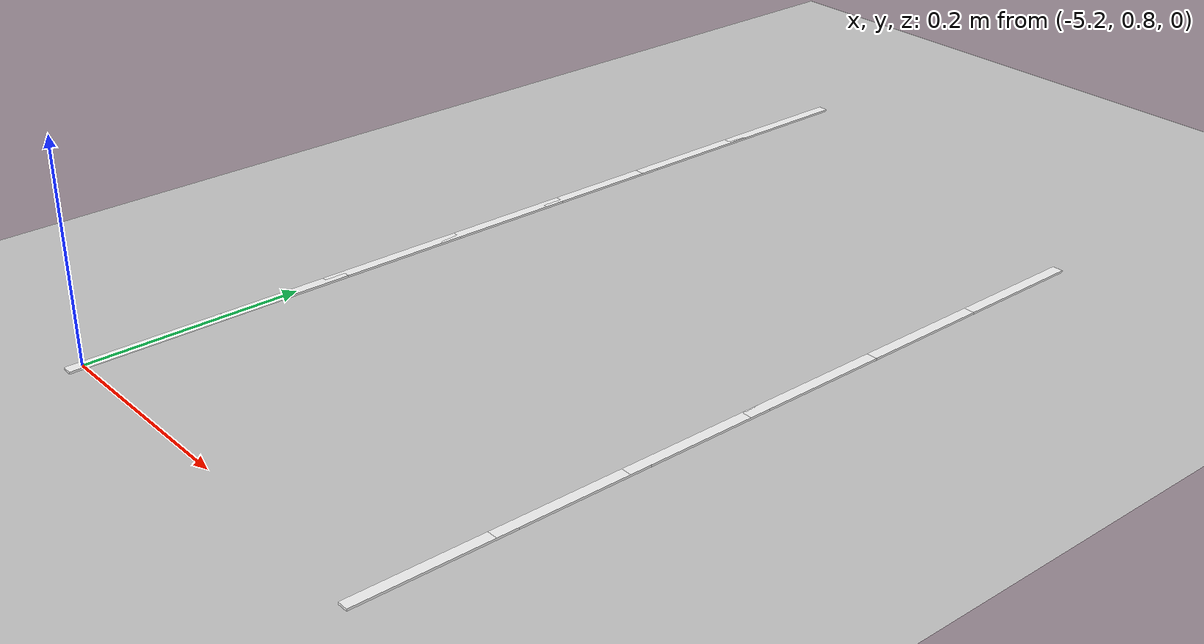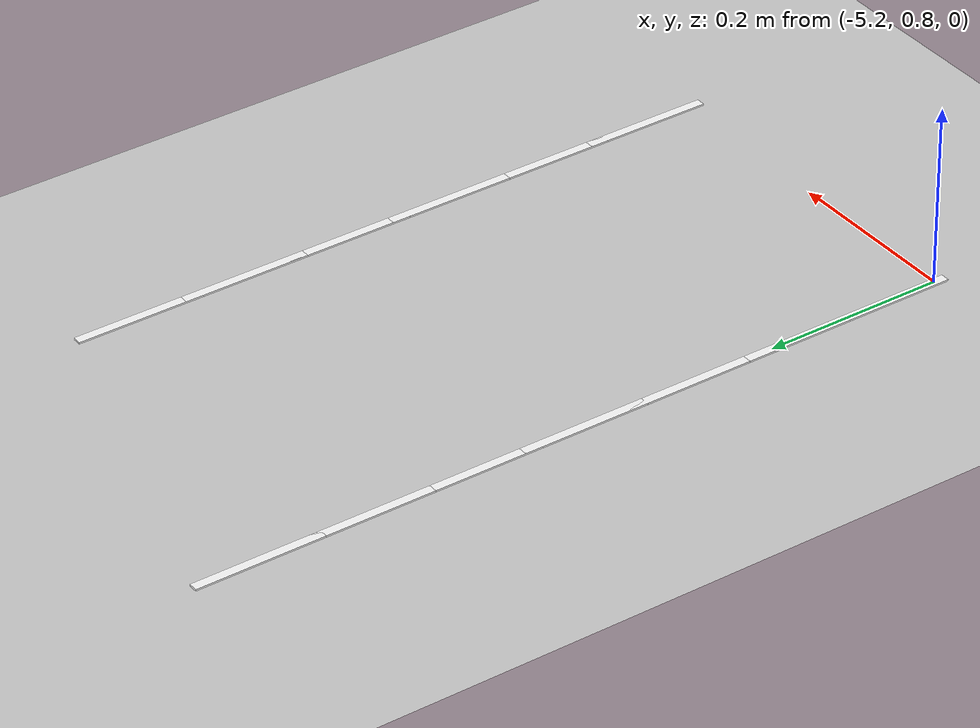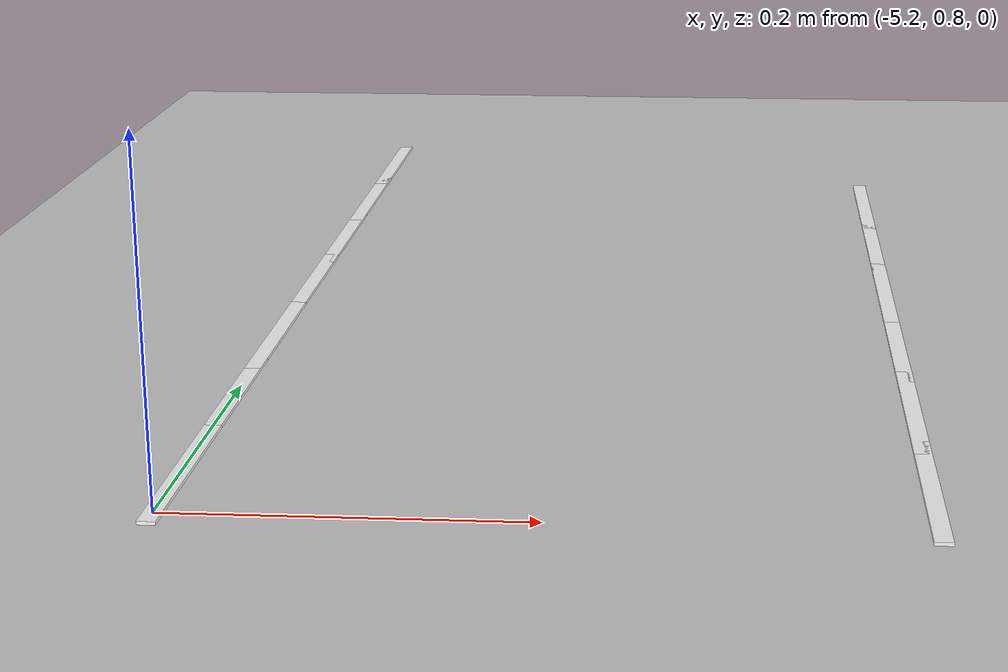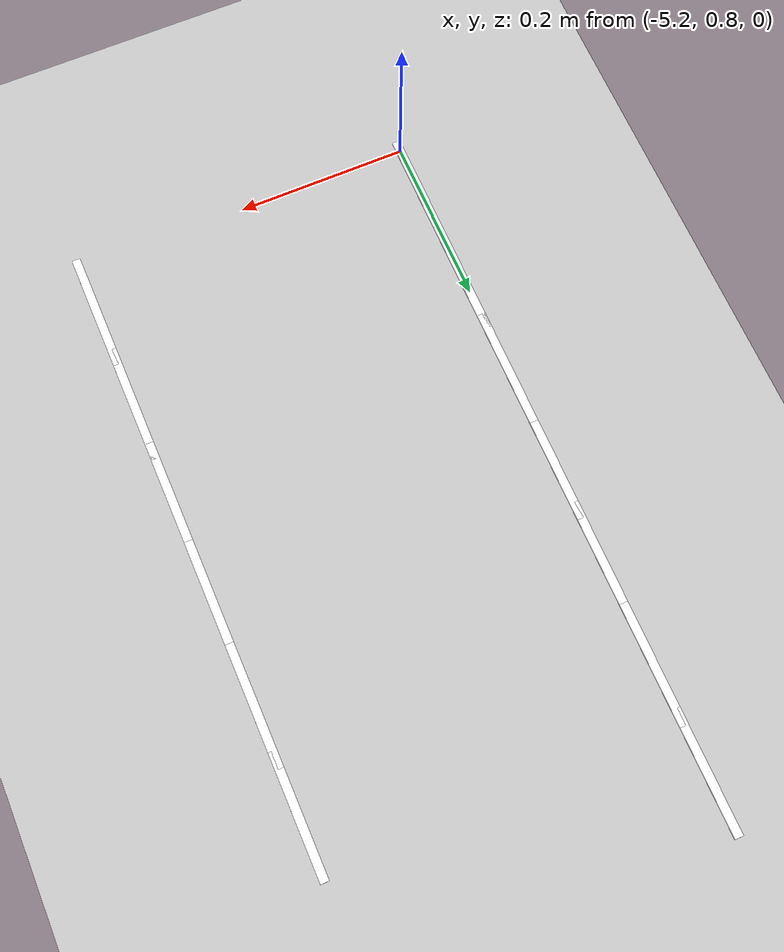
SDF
<sdf version="1.7">
 <world name="default">
  <model name="ground_plane">
   <static>1</static>
   <link name="link">
    <collision name="collision">
     <geometry><plane><normal>0 0 1</normal><size>100 100</size></plane></geometry>
     <surface>
      <contact><collide_bitmask>65535</collide_bitmask></contact>
      <friction><ode><mu>100</mu><mu2>50</mu2></ode></friction>
     </surface>
    </collision>
    <visual name="visual">
     <cast_shadows>0</cast_shadows>
     <geometry><plane><normal>0 0 1</normal><size>100 100</size></plane></geometry>
     <material>
      <script><uri>file://media/materials/scripts/gazebo.material</uri><name>Gazebo/Grey</name></script>
     </material>
    </visual>
   </link>
  </model>
  <model name="lane_line_right_311">
   <static>1</static>
   <link name="link">
    <pose>0 0 -0.004 0 -0 0</pose>
    <visual name="visual">
     <geometry><box><size>0.1424 0.01 0.01</size></box></geometry>
     <material><ambient>1 1 1 1</ambient><diffuse>1 1 1 1</diffuse></material>
    </visual>
    <collision name="collision"><geometry><box><size>0.1424 0.01 0.01</size></box></geometry></collision>
   </link>
   <pose>-5.2 1.59184 0 0 0 -1.5708</pose>
  </model>
  <model name="lane_line_left_312">
   <static>1</static>
   <link name="link">
    <pose>0 0 -0.004 0 -0 0</pose>
    <visual name="visual">
     <geometry><box><size>0.1424 0.01 0.01</size></box></geometry>
     <material><ambient>1 1 1 1</ambient><diffuse>1 1 1 1</diffuse></material>
    </visual>
    <collision name="collision"><geometry><box><size>0.1424 0.01 0.01</size></box></geometry></collision>
   </link>
   <pose>-4.8 1.46939 0 0 0 -1.5708</pose>
  </model>
  <model name="lane_line_right_312">
   <static>1</static>
   <link name="link">
    <pose>0 0 -0.004 0 -0 0</pose>
    <visual name="visual">
     <geometry><box><size>0.1424 0.01 0.01</size></box></geometry>
     <material><ambient>1 1 1 1</ambient><diffuse>1 1 1 1</diffuse></material>
    </visual>
    <collision name="collision"><geometry><box><size>0.1424 0.01 0.01</size></box></geometry></collision>
   </link>
   <pose>-5.2 1.46939 0 0 0 -1.5708</pose>
  </model>
  <model name="lane_line_left_313">
   <static>1</static>
   <link name="link">
    <pose>0 0 -0.004 0 -0 0</pose>
    <visual name="visual">
     <geometry><box><size>0.1424 0.01 0.01</size></box></geometry>
     <material><ambient>1 1 1 1</ambient><diffuse>1 1 1 1</diffuse></material>
    </visual>
    <collision name="collision"><geometry><box><size>0.1424 0.01 0.01</size></box></geometry></collision>
   </link>
   <pose>-4.8 1.34694 0 0 0 -1.5708</pose>
  </model>
  <model name="lane_line_right_313">
   <static>1</static>
   <link name="link">
    <pose>0 0 -0.004 0 -0 0</pose>
    <visual name="visual">
     <geometry><box><size>0.1424 0.01 0.01</size></box></geometry>
     <material><ambient>1 1 1 1</ambient><diffuse>1 1 1 1</diffuse></material>
    </visual>
    <collision name="collision"><geometry><box><size>0.1424 0.01 0.01</size></box></geometry></collision>
   </link>
   <pose>-5.2 1.34694 0 0 0 -1.5708</pose>
  </model>
  <model name="lane_line_left_314">
   <static>1</static>
   <link name="link">
    <pose>0 0 -0.004 0 -0 0</pose>
    <visual name="visual">
     <geometry><box><size>0.1424 0.01 0.01</size></box></geometry>
     <material><ambient>1 1 1 1</ambient><diffuse>1 1 1 1</diffuse></material>
    </visual>
    <collision name="collision"><geometry><box><size>0.1424 0.01 0.01</size></box></geometry></collision>
   </link>
   <pose>-4.8 1.22449 0 0 0 -1.5708</pose>
  </model>
  <model name="lane_line_right_314">
   <static>1</static>
   <link name="link">
    <pose>0 0 -0.004 0 -0 0</pose>
    <visual name="visual">
     <geometry><box><size>0.1424 0.01 0.01</size></box></geometry>
     <material><ambient>1 1 1 1</ambient><diffuse>1 1 1 1</diffuse></material>
    </visual>
    <collision name="collision"><geometry><box><size>0.1424 0.01 0.01</size></box></geometry></collision>
   </link>
   <pose>-5.2 1.22449 0 0 0 -1.5708</pose>
  </model>
  <model name="lane_line_left_315">
   <static>1</static>
   <link name="link">
    <pose>0 0 -0.004 0 -0 0</pose>
    <visual name="visual">
     <geometry><box><size>0.1424 0.01 0.01</size></box></geometry>
     <material><ambient>1 1 1 1</ambient><diffuse>1 1 1 1</diffuse></material>
    </visual>
    <collision name="collision"><geometry><box><size>0.1424 0.01 0.01</size></box></geometry></collision>
   </link>
   <pose>-4.8 1.10204 0 0 0 -1.5708</pose>
  </model>
  <model name="lane_line_right_315">
   <static>1</static>
   <link name="link">
    <pose>0 0 -0.004 0 -0 0</pose>
    <visual name="visual">
     <geometry><box><size>0.1424 0.01 0.01</size></box></geometry>
     <material><ambient>1 1 1 1</ambient><diffuse>1 1 1 1</diffuse></material>
    </visual>
    <collision name="collision"><geometry><box><size>0.1424 0.01 0.01</size></box></geometry></collision>
   </link>
   <pose>-5.2 1.10204 0 0 0 -1.5708</pose>
  </model>
  <model name="lane_line_left_316">
   <static>1</static>
   <link name="link">
    <pose>0 0 -0.004 0 -0 0</pose>
    <visual name="visual">
     <geometry><box><size>0.1424 0.01 0.01</size></box></geometry>
     <material><ambient>1 1 1 1</ambient><diffuse>1 1 1 1</diffuse></material>
    </visual>
    <collision name="collision"><geometry><box><size>0.1424 0.01 0.01</size></box></geometry></collision>
   </link>
   <pose>-4.8 0.979592 0 0 0 -1.5708</pose>
  </model>
  <model name="lane_line_right_316">
   <static>1</static>
   <link name="link">
    <pose>0 0 -0.004 0 -0 0</pose>
    <visual name="visual">
     <geometry><box><size>0.1424 0.01 0.01</size></box></geometry>
     <material><ambient>1 1 1 1</ambient><diffuse>1 1 1 1</diffuse></material>
    </visual>
    <collision name="collision"><geometry><box><size>0.1424 0.01 0.01</size></box></geometry></collision>
   </link>
   <pose>-5.2 0.979592 0 0 0 -1.5708</pose>
  </model>
  <model name="lane_line_left_317">
   <static>1</static>
   <link name="link">
    <pose>0 0 -0.004 0 -0 0</pose>
    <visual name="visual">
     <geometry><box><size>0.1424 0.01 0.01</size></box></geometry>
     <material><ambient>1 1 1 1</ambient><diffuse>1 1 1 1</diffuse></material>
    </visual>
    <collision name="collision"><geometry><box><size>0.1424 0.01 0.01</size></box></geometry></collision>
   </link>
   <pose>-4.8 0.857143 0 0 0 -1.5708</pose>
  </model>
  <model name="lane_line_right_317">
   <static>1</static>
   <link name="link">
    <pose>0 0 -0.004 0 -0 0</pose>
    <visual name="visual">
     <geometry><box><size>0.1424 0.01 0.01</size></box></geometry>
     <material><ambient>1 1 1 1</ambient><diffuse>1 1 1 1</diffuse></material>
    </visual>
    <collision name="collision"><geometry><box><size>0.1424 0.01 0.01</size></box></geometry></collision>
   </link>
   <pose>-5.2 0.857143 0 0 0 -1.5708</pose>
  </model>
 </world>
</sdf>
